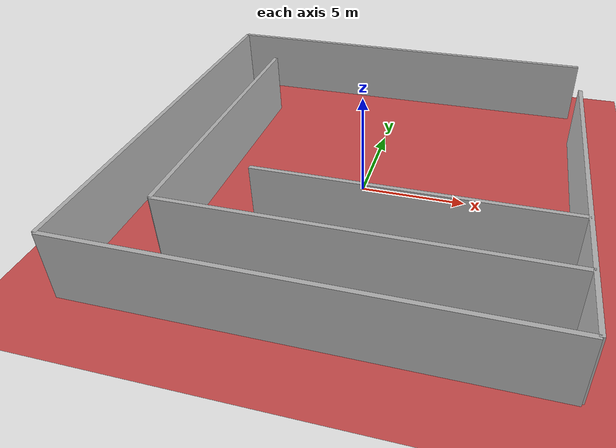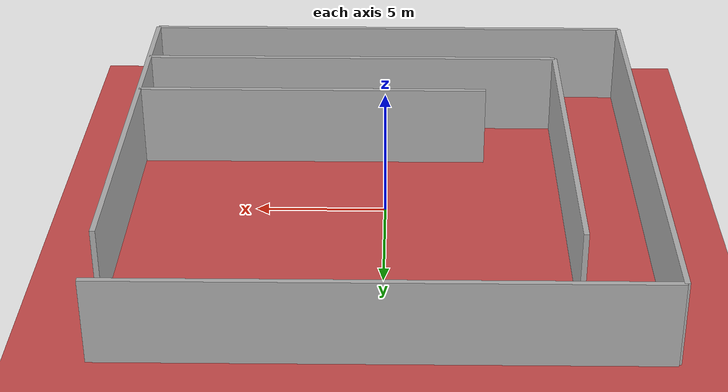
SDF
<?xml version="1.0" ?>
<sdf version="1.9">
    <world name="XTa">
        <physics name="1ms" type="ignore">
            <max_step_size>0.001</max_step_size>
            <real_time_factor>1.0</real_time_factor>
        </physics>

        <plugin filename="gz-sim-physics-system"
                name="gz::sim::systems::Physics">
        </plugin>
        <plugin filename="gz-sim-sensors-system"
                name="gz::sim::systems::Sensors">
            <render_engine>ogre2</render_engine>
        </plugin>
        <plugin filename="gz-sim-user-commands-system"
                name="gz::sim::systems::UserCommands">
        </plugin>
        <plugin filename="gz-sim-scene-broadcaster-system"
                name="gz::sim::systems::SceneBroadcaster">
        </plugin>

        <scene>
            <ambient>1.0 1.0 1.0</ambient>
            <background>0.8 0.8 0.8</background>
            <sky></sky>
        </scene>

        <light type="directional" name="sun">
            <cast_shadows>true</cast_shadows>
            <pose>0 0 10 0 0 0</pose>
            <diffuse>0.8 0.8 0.8 1</diffuse>
            <specular>0.8 0.8 0.8 1</specular>
            <attenuation>
                <range>1000</range>
                <constant>0.9</constant>
                <linear>0.01</linear>
                <quadratic>0.001</quadratic>
            </attenuation>
            <direction>-0.5 0.1 -0.9</direction>
        </light>

        <spherical_coordinates>
            <latitude_deg>-35.3632621</latitude_deg>
            <longitude_deg>149.1652374</longitude_deg>
            <elevation>10.0</elevation>
            <heading_deg>0</heading_deg>
            <surface_model>EARTH_WGS84</surface_model>
        </spherical_coordinates>

        <model name="floor">
            <static>true</static>
            <link name="link">
                <collision name="collision">
                    <geometry>
                        <plane>
                            <normal>0 0 1</normal>
                            <size>100 100</size>
                        </plane>
                    </geometry>
                    <surface>
                        <friction>
                            <ode>
                                <mu>100</mu>
                                <mu2>50</mu2>
                            </ode>
                        </friction>
                    </surface>
                </collision>
                <visual name="visual">
                    <cast_shadows>false</cast_shadows>
                    <geometry>
                        <plane>
                            <normal>0 0 1</normal>
                            <size>100 100</size>
                        </plane>
                    </geometry>
                    <material>
                        <diffuse>0.8 0.3 0.3 1</diffuse>
                    </material>
                </visual>
            </link>
        </model>

        <model name='maze'>
            <static>1</static>
            <link name='Wall_0'>
                <pose degrees="true">-10 -10 0 0 0 90</pose>
                <collision name='Wall_0_Collision'>
                    <pose>10 0 1.25 0 0 0</pose>
                    <geometry>
                        <box>
                            <size>20 0.2 4</size>
                        </box>
                    </geometry>
                </collision>
                <visual name='Wall_0_Visual'>
                    <pose>10 0 1.25 0 0 0</pose>
                    <geometry>
                        <box>
                            <size>20 0.2 4</size>
                        </box>
                    </geometry>
                    <material>
                        <diffuse>0.699999988 0.699999988 0.699999988 1</diffuse>
                    </material>
                </visual>
            </link>

            <link name='Wall_1'>
                <pose>-10 -10 0 0 0 0</pose>
                <collision name='Wall_1_Collision'>
                    <pose>10 0 1.25 0 0 0</pose>
                    <geometry>
                        <box>
                            <size>20 0.2 4</size>
                        </box>
                    </geometry>
                </collision>
                <visual name='Wall_1_Visual'>
                    <pose>10 0 1.25 0 0 0</pose>
                    <geometry>
                        <box>
                            <size>20 0.2 4</size>
                        </box>
                    </geometry>
                    <material>
                        <diffuse>0.699999988 0.699999988 0.699999988 1</diffuse>
                    </material>
                </visual>
            </link>

            <link name='Wall_2'>
                <pose degrees="true">10 -10 0 0 0 90</pose>
                <collision name='Wall_2_Collision'>
                    <pose>8.5 0 1.25 0 0 0</pose>
                    <geometry>
                        <box>
                            <size>17 0.2 4</size>
                        </box>
                    </geometry>
                </collision>
                <visual name='Wall_2_Visual'>
                    <pose>8.5 0 1.25 0 0 0</pose>
                    <geometry>
                        <box>
                            <size>17 0.2 4</size>
                        </box>
                    </geometry>
                    <material>
                        <diffuse>0.699999988 0.699999988 0.699999988 1</diffuse>
                    </material>
                </visual>
            </link>

            <link name='Wall_3'>
                <pose>-10 10 0 0 0 0</pose>
                <collision name='Wall_3_Collision'>
                    <pose>10 0 1.25 0 0 0</pose>
                    <geometry>
                        <box>
                            <size>20 0.2 4</size>
                        </box>
                    </geometry>
                </collision>
                <visual name='Wall_3_Visual'>
                    <pose>10 0 1.25 0 0 0</pose>
                    <geometry>
                        <box>
                            <size>20 0.2 4</size>
                        </box>
                    </geometry>
                    <material>
                        <diffuse>0.699999988 0.699999988 0.699999988 1</diffuse>
                    </material>
                </visual>
            </link>

            <link name='Wall_4'>
                <pose>-7 -7 0 0 0 0</pose>
                <collision name='Wall_4_Collision'>
                    <pose>8.5 0 1.25 0 0 0</pose>
                    <geometry>
                        <box>
                            <size>17 0.2 4</size>
                        </box>
                    </geometry>
                </collision>
                <visual name='Wall_4_Visual'>
                    <pose>8.5 0 1.25 0 0 0</pose>
                    <geometry>
                        <box>
                            <size>17 0.2 4</size>
                        </box>
                    </geometry>
                    <material>
                        <diffuse>0.699999988 0.699999988 0.699999988 1</diffuse>
                    </material>
                </visual>
            </link>

           <link name='Wall_5'>
                <pose degrees="true">-7 -7 0 0 0 90</pose>
                <collision name='Wall_5_Collision'>
                    <pose>7 0 1.25 0 0 0</pose>
                    <geometry>
                        <box>
                            <size>14 0.2 4</size>
                        </box>
                    </geometry>
                </collision>
                <visual name='Wall_5_Visual'>
                    <pose>7 0 1.25 0 0 0</pose>
                    <geometry>
                        <box>
                            <size>14 0.2 4</size>
                        </box>
                    </geometry>
                    <material>
                        <diffuse>0.699999988 0.699999988 0.699999988 1</diffuse>
                    </material>
                </visual>
            </link>

            <link name='Wall_6'>
                <pose>-4 -4 0 0 0 0</pose>
                <collision name='Wall_6_Collision'>
                    <pose>7 0 1.25 0 0 0</pose>
                    <geometry>
                        <box>
                            <size>14 0.2 4</size>
                        </box>
                    </geometry>
                </collision>
                <visual name='Wall_6_Visual'>
                    <pose>7 0 1.25 0 0 0</pose>
                    <geometry>
                        <box>
                            <size>14 0.2 4</size>
                        </box>
                    </geometry>
                    <material>
                        <diffuse>0.699999988 0.699999988 0.699999988 1</diffuse>
                    </material>
                </visual>
            </link>
        </model>

    </world>
</sdf>
